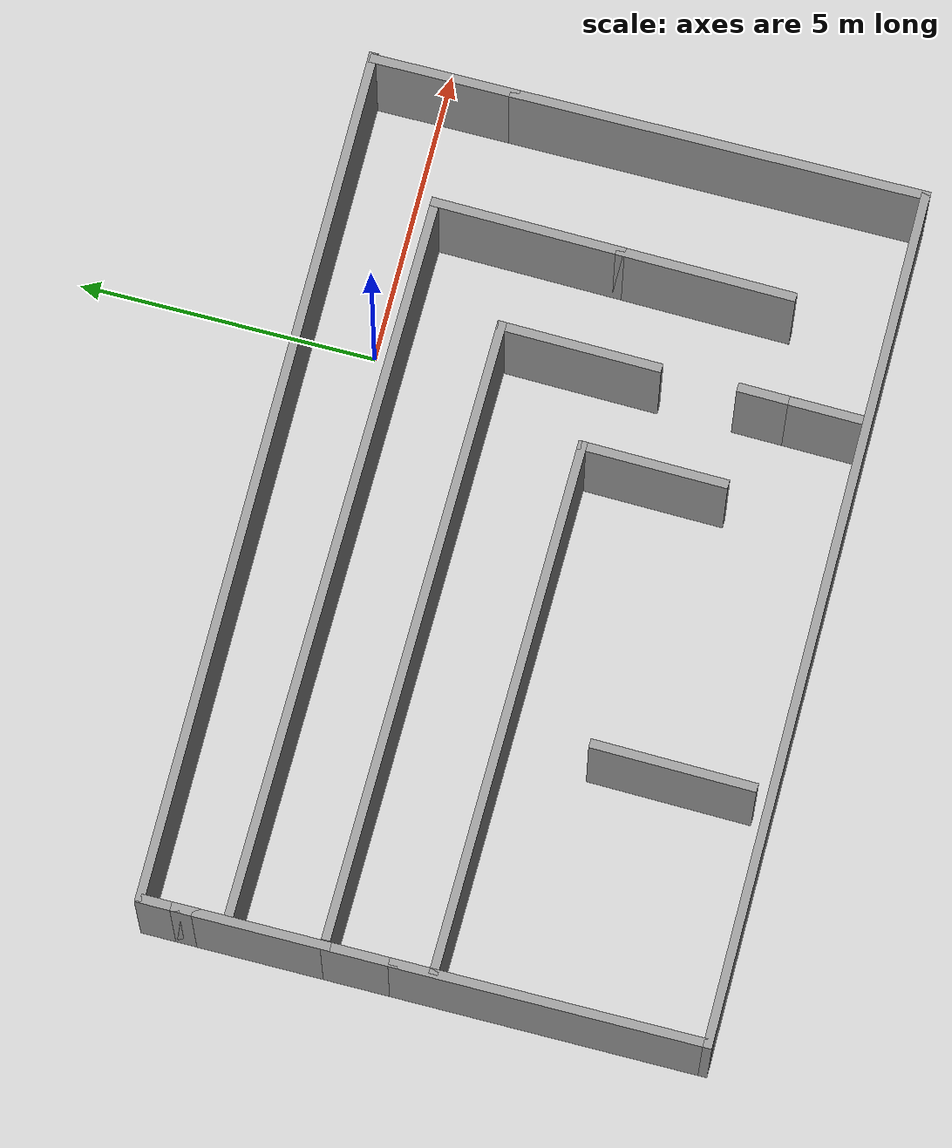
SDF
<sdf version="1.7">
 <world name="default">
  <scene><ambient>0.4 0.4 0.4 1</ambient><background>0.7 0.7 0.7 1</background><shadows>1</shadows></scene>
  <light name="sun" type="directional">
   <pose>0 0 10 0 -0 0</pose>
   <diffuse>0.8 0.8 0.8 1</diffuse>
   <specular>0.2 0.2 0.2 1</specular>
   <attenuation>
    <range>1000</range>
    <constant>0.9</constant>
    <linear>0.01</linear>
    <quadratic>0.001</quadratic>
   </attenuation>
   <direction>-0.5 0.1 -0.9</direction>
   <spot><inner_angle>0</inner_angle><outer_angle>0</outer_angle><falloff>0</falloff></spot>
  </light>
  <model name="ground_plane">
   <static>1</static>
   <link name="link">
    <collision name="collision">
     <geometry><plane><normal>0 0 1</normal><size>100 100</size></plane></geometry>
     <surface><friction><ode><mu>100</mu><mu2>50</mu2></ode></friction></surface>
    </collision>
    <visual name="visual">
     <cast_shadows>0</cast_shadows>
     <geometry><plane><normal>0 0 1</normal><size>100 100</size></plane></geometry>
     <material>
      <script><uri>file://media/materials/scripts/gazebo.material</uri><name>Gazebo/Grey</name></script>
     </material>
    </visual>
   </link>
  </model>
  <physics type="ode">
   <real_time_update_rate>0</real_time_update_rate>
   <max_step_size>0.001</max_step_size>
   <real_time_factor>1</real_time_factor>
   <ode>
    <solver>
     <type>quick</type>
     <iters>150</iters>
     <precon_iters>0</precon_iters>
     <sor>1.4</sor>
     <use_dynamic_moi_rescaling>1</use_dynamic_moi_rescaling>
    </solver>
    <constraints>
     <cfm>1e-05</cfm>
     <erp>0.2</erp>
     <contact_max_correcting_vel>2000</contact_max_correcting_vel>
     <contact_surface_layer>0.01</contact_surface_layer>
    </constraints>
   </ode>
  </physics>
  <gravity>0 0 -9.8</gravity>
  <magnetic_field>6e-06 2.3e-05 -4.2e-05</magnetic_field>
  <atmosphere type="adiabatic"/>
  <spherical_coordinates>
   <surface_model>EARTH_WGS84</surface_model>
   <latitude_deg>0</latitude_deg>
   <longitude_deg>0</longitude_deg>
   <elevation>0</elevation>
   <heading_deg>0</heading_deg>
  </spherical_coordinates>
  <model name="half_square">
   <pose>-2.93442 -3.48981 0 0 -0 0</pose>
   <link name="Wall_0">
    <collision name="Wall_0_Collision">
     <geometry><box><size>14.5 0.15 2.5</size></box></geometry>
     <pose>0 0 1.25 0 -0 0</pose>
    </collision>
    <visual name="Wall_0_Visual">
     <pose>0 0 1.25 0 -0 0</pose>
     <geometry><box><size>14.5 0.15 2.5</size></box></geometry>
     <material>
      <script><uri>file://media/materials/scripts/gazebo.material</uri><name>Gazebo/Grey</name></script>
      <ambient>1 1 1 1</ambient>
     </material>
     <meta><layer>0</layer></meta>
    </visual>
    <pose>-0.010056 -4.61503 0 0 -0 0</pose>
   </link>
   <link name="Wall_11">
    <collision name="Wall_11_Collision">
     <geometry><box><size>2.5 0.15 2.5</size></box></geometry>
     <pose>0 0 1.25 0 -0 0</pose>
    </collision>
    <visual name="Wall_11_Visual">
     <pose>0 0 1.25 0 -0 0</pose>
     <geometry><box><size>2.5 0.15 2.5</size></box></geometry>
     <material>
      <script><uri>file://media/materials/scripts/gazebo.material</uri><name>Gazebo/Grey</name></script>
      <ambient>1 1 1 1</ambient>
     </material>
     <meta><layer>0</layer></meta>
    </visual>
    <pose>7.16494 3.40997 0 0 -0 1.5708</pose>
   </link>
   <link name="Wall_13">
    <collision name="Wall_13_Collision">
     <geometry><box><size>0.730235 0.15 2.5</size></box></geometry>
     <pose>0 0 1.25 0 -0 0</pose>
    </collision>
    <visual name="Wall_13_Visual">
     <pose>0 0 1.25 0 -0 0</pose>
     <geometry><box><size>0.730235 0.15 2.5</size></box></geometry>
     <material>
      <script><uri>file://media/materials/scripts/gazebo.material</uri><name>Gazebo/Grey</name></script>
      <ambient>1 1 1 1</ambient>
     </material>
     <meta><layer>0</layer></meta>
    </visual>
    <pose>-7.18506 4.32491 0 0 -0 1.5708</pose>
   </link>
   <link name="Wall_14">
    <collision name="Wall_14_Collision">
     <geometry><box><size>14.5 0.15 2.5</size></box></geometry>
     <pose>0 0 1.25 0 -0 0</pose>
    </collision>
    <visual name="Wall_14_Visual">
     <pose>0 0 1.25 0 -0 0</pose>
     <geometry><box><size>14.5 0.15 2.5</size></box></geometry>
     <material>
      <script><uri>file://media/materials/scripts/gazebo.material</uri><name>Gazebo/Grey</name></script>
      <ambient>1 1 1 1</ambient>
     </material>
     <meta><layer>0</layer></meta>
    </visual>
    <pose>0.010057 4.61486 0 0 -0 0</pose>
   </link>
   <link name="Wall_2">
    <collision name="Wall_2_Collision">
     <geometry><box><size>5.25 0.15 2.5</size></box></geometry>
     <pose>0 0 1.25 0 -0 0</pose>
    </collision>
    <visual name="Wall_2_Visual">
     <pose>0 0 1.25 0 -0 0</pose>
     <geometry><box><size>5.25 0.15 2.5</size></box></geometry>
     <material>
      <script><uri>file://media/materials/scripts/gazebo.material</uri><name>Gazebo/Grey</name></script>
      <ambient>1 1 1 1</ambient>
     </material>
     <meta><layer>0</layer></meta>
    </visual>
    <pose>-7.18506 -2.06503 0 0 -0 1.5708</pose>
   </link>
   <link name="Wall_4">
    <collision name="Wall_4_Collision">
     <geometry><box><size>7 0.15 2.5</size></box></geometry>
     <pose>0 0 1.25 0 -0 0</pose>
    </collision>
    <visual name="Wall_4_Visual">
     <pose>0 0 1.25 0 -0 0</pose>
     <geometry><box><size>7 0.15 2.5</size></box></geometry>
     <material>
      <script><uri>file://media/materials/scripts/gazebo.material</uri><name>Gazebo/Grey</name></script>
      <ambient>1 1 1 1</ambient>
     </material>
     <meta><layer>0</layer></meta>
    </visual>
    <pose>7.16494 -1.19003 0 0 -0 1.5708</pose>
   </link>
   <link name="Wall_6">
    <collision name="Wall_6_Collision">
     <geometry><box><size>1.25 0.15 2.5</size></box></geometry>
     <pose>0 0 1.25 0 -0 0</pose>
    </collision>
    <visual name="Wall_6_Visual">
     <pose>0 0 1.25 0 -0 0</pose>
     <geometry><box><size>1.25 0.15 2.5</size></box></geometry>
     <material>
      <script><uri>file://media/materials/scripts/gazebo.material</uri><name>Gazebo/Grey</name></script>
      <ambient>1 1 1 1</ambient>
     </material>
     <meta><layer>0</layer></meta>
    </visual>
    <pose>-7.18506 1.03497 0 0 -0 1.5708</pose>
   </link>
   <link name="Wall_8">
    <collision name="Wall_8_Collision">
     <geometry><box><size>2.25 0.15 2.5</size></box></geometry>
     <pose>0 0 1.25 0 -0 0</pose>
    </collision>
    <visual name="Wall_8_Visual">
     <pose>0 0 1.25 0 -0 0</pose>
     <geometry><box><size>2.25 0.15 2.5</size></box></geometry>
     <material>
      <script><uri>file://media/materials/scripts/gazebo.material</uri><name>Gazebo/Grey</name></script>
      <ambient>1 1 1 1</ambient>
     </material>
     <meta><layer>0</layer></meta>
    </visual>
    <pose>-7.18506 2.63497 0 0 -0 1.5708</pose>
   </link>
   <link name="Wall_9">
    <collision name="Wall_9_Collision">
     <geometry><box><size>0.5 0.15 2.5</size></box></geometry>
     <pose>0 0 1.25 0 -0 0</pose>
    </collision>
    <visual name="Wall_9_Visual">
     <pose>0 0 1.25 0 -0 0</pose>
     <geometry><box><size>0.5 0.15 2.5</size></box></geometry>
     <material>
      <script><uri>file://media/materials/scripts/gazebo.material</uri><name>Gazebo/Grey</name></script>
      <ambient>1 1 1 1</ambient>
     </material>
     <meta><layer>0</layer></meta>
    </visual>
    <pose>-7.18506 3.85997 0 0 -0 1.5708</pose>
   </link>
   <static>1</static>
  </model>
  <model name="quarter_maze">
   <pose>-3.99245 -3.84084 0 0 -0 3.12719</pose>
   <link name="Wall_29">
    <collision name="Wall_29_Collision">
     <geometry><box><size>3.25 0.15 2.5</size></box></geometry>
     <pose>0 0 1.25 0 -0 0</pose>
    </collision>
    <visual name="Wall_29_Visual">
     <pose>0 0 1.25 0 -0 0</pose>
     <geometry><box><size>3.25 0.15 2.5</size></box></geometry>
     <material>
      <script><uri>file://media/materials/scripts/gazebo.material</uri><name>Gazebo/Grey</name></script>
      <ambient>1 1 1 1</ambient>
     </material>
     <meta><layer>0</layer></meta>
    </visual>
    <pose>-6.07163 -1.90204 0 0 -0 -1.5708</pose>
   </link>
   <link name="Wall_30">
    <collision name="Wall_30_Collision">
     <geometry><box><size>12.25 0.15 2.5</size></box></geometry>
     <pose>0 0 1.25 0 -0 0</pose>
    </collision>
    <visual name="Wall_30_Visual">
     <pose>0 0 1.25 0 -0 0</pose>
     <geometry><box><size>12.25 0.15 2.5</size></box></geometry>
     <material>
      <script><uri>file://media/materials/scripts/gazebo.material</uri><name>Gazebo/Grey</name></script>
      <ambient>1 1 1 1</ambient>
     </material>
     <meta><layer>0</layer></meta>
    </visual>
    <pose>-0.021625 -3.45204 0 0 -0 0</pose>
   </link>
   <link name="Wall_32">
    <collision name="Wall_32_Collision">
     <geometry><box><size>3 0.15 2.5</size></box></geometry>
     <pose>0 0 1.25 0 -0 0</pose>
    </collision>
    <visual name="Wall_32_Visual">
     <pose>0 0 1.25 0 -0 0</pose>
     <geometry><box><size>3 0.15 2.5</size></box></geometry>
     <material>
      <script><uri>file://media/materials/scripts/gazebo.material</uri><name>Gazebo/Grey</name></script>
      <ambient>1 1 1 1</ambient>
     </material>
     <meta><layer>0</layer></meta>
    </visual>
    <pose>-6.07163 1.07296 0 0 -0 1.5708</pose>
   </link>
   <link name="Wall_34">
    <collision name="Wall_34_Collision">
     <geometry><box><size>1 0.15 2.5</size></box></geometry>
     <pose>0 0 1.25 0 -0 0</pose>
    </collision>
    <visual name="Wall_34_Visual">
     <pose>0 0 1.25 0 -0 0</pose>
     <geometry><box><size>1 0.15 2.5</size></box></geometry>
     <material>
      <script><uri>file://media/materials/scripts/gazebo.material</uri><name>Gazebo/Grey</name></script>
      <ambient>1 1 1 1</ambient>
     </material>
     <meta><layer>0</layer></meta>
    </visual>
    <pose>-4.37992 2.54599 0 0 -0 1.5708</pose>
   </link>
   <link name="Wall_36">
    <collision name="Wall_36_Collision">
     <geometry><box><size>1.25 0.15 2.5</size></box></geometry>
     <pose>0 0 1.25 0 -0 0</pose>
    </collision>
    <visual name="Wall_36_Visual">
     <pose>0 0 1.25 0 -0 0</pose>
     <geometry><box><size>1.25 0.15 2.5</size></box></geometry>
     <material>
      <script><uri>file://media/materials/scripts/gazebo.material</uri><name>Gazebo/Grey</name></script>
      <ambient>1 1 1 1</ambient>
     </material>
     <meta><layer>0</layer></meta>
    </visual>
    <pose>-4.37992 3.52099 0 0 -0 1.5708</pose>
   </link>
   <link name="Wall_38">
    <collision name="Wall_38_Collision">
     <geometry><box><size>2.75 0.15 2.5</size></box></geometry>
     <pose>0 0 1.25 0 -0 0</pose>
    </collision>
    <visual name="Wall_38_Visual">
     <pose>0 0 1.25 0 -0 0</pose>
     <geometry><box><size>2.75 0.15 2.5</size></box></geometry>
     <material>
      <script><uri>file://media/materials/scripts/gazebo.material</uri><name>Gazebo/Grey</name></script>
      <ambient>1 1 1 1</ambient>
     </material>
     <meta><layer>0</layer></meta>
    </visual>
    <pose>-4.35614 -0.576169 0 0 -0 -1.5708</pose>
   </link>
   <link name="Wall_39">
    <collision name="Wall_39_Collision">
     <geometry><box><size>10.5 0.15 2.5</size></box></geometry>
     <pose>0 0 1.25 0 -0 0</pose>
    </collision>
    <visual name="Wall_39_Visual">
     <pose>0 0 1.25 0 -0 0</pose>
     <geometry><box><size>10.5 0.15 2.5</size></box></geometry>
     <material>
      <script><uri>file://media/materials/scripts/gazebo.material</uri><name>Gazebo/Grey</name></script>
      <ambient>1 1 1 1</ambient>
     </material>
     <meta><layer>0</layer></meta>
    </visual>
    <pose>0.818858 -1.87617 0 0 -0 0</pose>
   </link>
   <link name="Wall_41">
    <collision name="Wall_41_Collision">
     <geometry><box><size>2.5 0.15 2.5</size></box></geometry>
     <pose>0 0 1.25 0 -0 0</pose>
    </collision>
    <visual name="Wall_41_Visual">
     <pose>0 0 1.25 0 -0 0</pose>
     <geometry><box><size>2.5 0.15 2.5</size></box></geometry>
     <material>
      <script><uri>file://media/materials/scripts/gazebo.material</uri><name>Gazebo/Grey</name></script>
      <ambient>1 1 1 1</ambient>
     </material>
     <meta><layer>0</layer></meta>
    </visual>
    <pose>-2.77838 1.07573 0 0 -0 -1.5708</pose>
   </link>
   <link name="Wall_42">
    <collision name="Wall_42_Collision">
     <geometry><box><size>9 0.15 2.5</size></box></geometry>
     <pose>0 0 1.25 0 -0 0</pose>
    </collision>
    <visual name="Wall_42_Visual">
     <pose>0 0 1.25 0 -0 0</pose>
     <geometry><box><size>9 0.15 2.5</size></box></geometry>
     <material>
      <script><uri>file://media/materials/scripts/gazebo.material</uri><name>Gazebo/Grey</name></script>
      <ambient>1 1 1 1</ambient>
     </material>
     <meta><layer>0</layer></meta>
    </visual>
    <pose>1.64663 -0.099267 0 0 -0 0</pose>
   </link>
   <link name="Wall_44">
    <collision name="Wall_44_Collision">
     <geometry><box><size>2.75 0.15 2.5</size></box></geometry>
     <pose>0 0 1.25 0 -0 0</pose>
    </collision>
    <visual name="Wall_44_Visual">
     <pose>0 0 1.25 0 -0 0</pose>
     <geometry><box><size>2.75 0.15 2.5</size></box></geometry>
     <material>
      <script><uri>file://media/materials/scripts/gazebo.material</uri><name>Gazebo/Grey</name></script>
      <ambient>1 1 1 1</ambient>
     </material>
     <meta><layer>0</layer></meta>
    </visual>
    <pose>1.89543 2.66958 0 0 -0 1.5708</pose>
   </link>
   <static>1</static>
  </model>
  <plugin name="gazebo_occupancy_map" filename="libgazebo_2Dmap_plugin.so">
   <map_resolution>0.02</map_resolution>
   <map_height>0.7</map_height>
   <map_size_x>20</map_size_x>
   <map_size_y>20</map_size_y>
   <init_robot_x>0</init_robot_x>
   <init_robot_y>0</init_robot_y>
  </plugin>
 </world>
</sdf>
